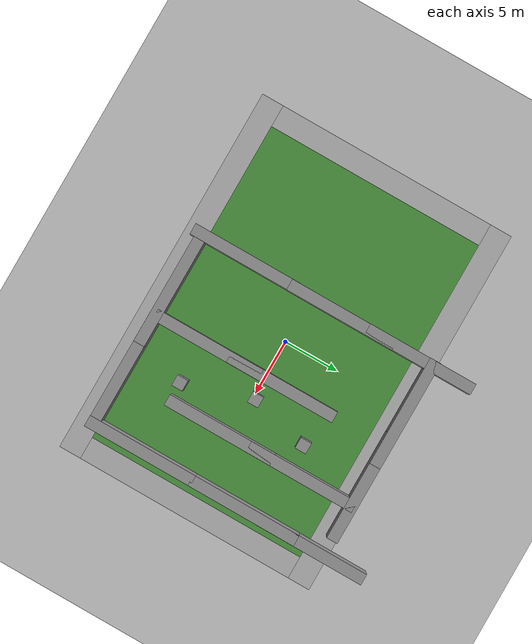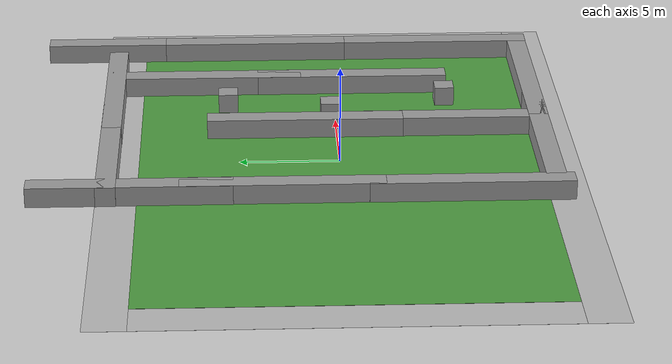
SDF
<sdf version="1.6">
 <world name="default">
  <light name="sun" type="directional">
   <pose>0 0 10 0 -0 0</pose>
   <diffuse>0.8 0.8 0.8 1</diffuse>
   <specular>0.2 0.2 0.2 1</specular>
   <attenuation>
    <range>1000</range>
    <constant>0.9</constant>
    <linear>0.01</linear>
    <quadratic>0.001</quadratic>
   </attenuation>
   <direction>-0.5 0.1 -0.9</direction>
  </light>
  <model name="ground_plane">
   <static>1</static>
   <link name="link">
    <collision name="collision">
     <geometry><plane><normal>0 0 1</normal><size>100 100</size></plane></geometry>
     <surface>
      <contact><collide_bitmask>65535</collide_bitmask></contact>
      <friction><ode><mu>100</mu><mu2>50</mu2></ode></friction>
     </surface>
    </collision>
    <visual name="visual">
     <cast_shadows>0</cast_shadows>
     <geometry><plane><normal>0 0 1</normal><size>100 100</size></plane></geometry>
     <material>
      <script><uri>file://media/materials/scripts/gazebo.material</uri><name>Gazebo/Grey</name></script>
     </material>
    </visual>
   </link>
  </model>
  <gravity>0 0 -9.8</gravity>
  <magnetic_field>6e-06 2.3e-05 -4.2e-05</magnetic_field>
  <atmosphere type="adiabatic"/>
  <physics name="default_physics" default="0" type="ode">
   <max_step_size>0.001</max_step_size>
   <real_time_factor>1</real_time_factor>
   <real_time_update_rate>1000</real_time_update_rate>
  </physics>
  <scene><ambient>0.4 0.4 0.4 1</ambient><background>0.7 0.7 0.7 1</background><shadows>1</shadows></scene>
  <audio><device>default</device></audio>
  <spherical_coordinates>
   <surface_model>EARTH_WGS84</surface_model>
   <latitude_deg>0</latitude_deg>
   <longitude_deg>0</longitude_deg>
   <elevation>0</elevation>
   <heading_deg>0</heading_deg>
  </spherical_coordinates>
  <model name="robocup_3d_field">
   <static>1</static>
   <link name="field">
    <pose>0 0 0.01 0 -0 0</pose>
    <collision name="collision">
     <geometry><plane><normal>0 0 1</normal><size>30 20</size></plane></geometry>
     <surface><friction><ode><mu>100</mu><mu2>50</mu2></ode></friction></surface>
    </collision>
    <visual name="base1">
     <pose>0 11 0.001 0 -0 0</pose>
     <cast_shadows>0</cast_shadows>
     <geometry><plane><normal>0 0 1</normal><size>34 2</size></plane></geometry>
     <material>
      <script>
       <uri>model://robocup_3Dsim_field/materials/scripts/</uri>
       <uri>model://robocup_3Dsim_field/materials/textures/</uri>
       <name>RoboCup/FieldBorder</name>
      </script>
     </material>
    </visual>
    <visual name="base2">
     <pose>0 -11 0.001 0 -0 0</pose>
     <cast_shadows>0</cast_shadows>
     <geometry><plane><normal>0 0 1</normal><size>34 2</size></plane></geometry>
     <material>
      <script>
       <uri>model://robocup_3Dsim_field/materials/scripts/</uri>
       <uri>model://robocup_3Dsim_field/materials/textures/</uri>
       <name>RoboCup/FieldBorder</name>
      </script>
     </material>
    </visual>
    <visual name="base3">
     <pose>16 0 0.001 0 -0 0</pose>
     <cast_shadows>0</cast_shadows>
     <geometry><plane><normal>0 0 1</normal><size>2 20</size></plane></geometry>
     <material>
      <script>
       <uri>model://robocup_3Dsim_field/materials/scripts/</uri>
       <uri>model://robocup_3Dsim_field/materials/textures/</uri>
       <name>RoboCup/FieldBorder</name>
      </script>
     </material>
    </visual>
    <visual name="base4">
     <pose>-16 0 0.001 0 -0 0</pose>
     <cast_shadows>0</cast_shadows>
     <geometry><plane><normal>0 0 1</normal><size>2 20</size></plane></geometry>
     <material>
      <script>
       <uri>model://robocup_3Dsim_field/materials/scripts/</uri>
       <uri>model://robocup_3Dsim_field/materials/textures/</uri>
       <name>RoboCup/FieldBorder</name>
      </script>
     </material>
    </visual>
    <visual name="carpet">
     <cast_shadows>0</cast_shadows>
     <geometry><plane><normal>0 0 1</normal><size>30 20</size></plane></geometry>
     <material>
      <script>
       <uri>model://robocup_3Dsim_field/materials/scripts/</uri>
       <uri>model://robocup_3Dsim_field/materials/textures/</uri>
       <name>RoboCup/Grass</name>
      </script>
     </material>
    </visual>
   </link>
   <pose>-0.041127 0.019225 0 0 -0 0</pose>
  </model>
  <model name="long_box_clone_0">
   <link name="link">
    <inertial>
     <mass>1</mass>
     <inertia>
      <ixx>0.166667</ixx>
      <ixy>0</ixy>
      <ixz>0</ixz>
      <iyy>0.166667</iyy>
      <iyz>0</iyz>
      <izz>0.166667</izz>
     </inertia>
    </inertial>
    <visual name="visual">
     <geometry><box><size>1 10 1</size></box></geometry>
     <material>
      <script><name>Gazebo/Grey</name><uri>file://media/materials/scripts/gazebo.material</uri></script>
      <shader type="vertex"><normal_map>__default__</normal_map></shader>
      <ambient>0.3 0.3 0.3 1</ambient>
      <diffuse>0.7 0.7 0.7 1</diffuse>
      <specular>0.01 0.01 0.01 1</specular>
      <emissive>0 0 0 1</emissive>
     </material>
    </visual>
    <collision name="collision">
     <geometry><box><size>1 10 1</size></box></geometry>
     <surface>
      <friction>
       <ode><mu>1</mu><mu2>1</mu2><fdir1>0 0 0</fdir1><slip1>0</slip1><slip2>0</slip2></ode>
       <torsional>
        <coefficient>1</coefficient>
        <patch_radius>0</patch_radius>
        <surface_radius>0</surface_radius>
        <use_patch_radius>1</use_patch_radius>
        <ode><slip>0</slip></ode>
       </torsional>
      </friction>
      <bounce><restitution_coefficient>0</restitution_coefficient><threshold>1e+06</threshold></bounce>
      <contact>
       <collide_without_contact>0</collide_without_contact>
       <collide_without_contact_bitmask>1</collide_without_contact_bitmask>
       <collide_bitmask>1</collide_bitmask>
       <ode>
        <soft_cfm>0</soft_cfm>
        <soft_erp>0.2</soft_erp>
        <kp>1e+13</kp>
        <kd>1</kd>
        <max_vel>0.01</max_vel>
        <min_depth>0</min_depth>
       </ode>
       <bullet>
        <split_impulse>1</split_impulse>
        <split_impulse_penetration_threshold>-0.01</split_impulse_penetration_threshold>
        <soft_cfm>0</soft_cfm>
        <soft_erp>0.2</soft_erp>
        <kp>1e+13</kp>
        <kd>1</kd>
       </bullet>
      </contact>
     </surface>
    </collision>
   </link>
   <static>0</static>
   <pose>-4.27651 -6.22006 0.51 0 -0 0</pose>
  </model>
  <model name="long_box_clone_clone">
   <link name="link">
    <inertial>
     <mass>1</mass>
     <inertia>
      <ixx>0.166667</ixx>
      <ixy>0</ixy>
      <ixz>0</ixz>
      <iyy>0.166667</iyy>
      <iyz>0</iyz>
      <izz>0.166667</izz>
     </inertia>
    </inertial>
    <visual name="visual">
     <geometry><box><size>1 10 1</size></box></geometry>
     <material>
      <script><name>Gazebo/Grey</name><uri>file://media/materials/scripts/gazebo.material</uri></script>
      <shader type="vertex"><normal_map>__default__</normal_map></shader>
      <ambient>0.3 0.3 0.3 1</ambient>
      <diffuse>0.7 0.7 0.7 1</diffuse>
      <specular>0.01 0.01 0.01 1</specular>
      <emissive>0 0 0 1</emissive>
     </material>
    </visual>
    <collision name="collision">
     <geometry><box><size>1 10 1</size></box></geometry>
     <surface>
      <friction>
       <ode><mu>1</mu><mu2>1</mu2><fdir1>0 0 0</fdir1><slip1>0</slip1><slip2>0</slip2></ode>
       <torsional>
        <coefficient>1</coefficient>
        <patch_radius>0</patch_radius>
        <surface_radius>0</surface_radius>
        <use_patch_radius>1</use_patch_radius>
        <ode><slip>0</slip></ode>
       </torsional>
      </friction>
      <bounce><restitution_coefficient>0</restitution_coefficient><threshold>1e+06</threshold></bounce>
      <contact>
       <collide_without_contact>0</collide_without_contact>
       <collide_without_contact_bitmask>1</collide_without_contact_bitmask>
       <collide_bitmask>1</collide_bitmask>
       <ode>
        <soft_cfm>0</soft_cfm>
        <soft_erp>0.2</soft_erp>
        <kp>1e+13</kp>
        <kd>1</kd>
        <max_vel>0.01</max_vel>
        <min_depth>0</min_depth>
       </ode>
       <bullet>
        <split_impulse>1</split_impulse>
        <split_impulse_penetration_threshold>-0.01</split_impulse_penetration_threshold>
        <soft_cfm>0</soft_cfm>
        <soft_erp>0.2</soft_erp>
        <kp>1e+13</kp>
        <kd>1</kd>
       </bullet>
      </contact>
     </surface>
    </collision>
   </link>
   <static>0</static>
   <pose>1.13888 -10.3322 0.51 0 0 -1.57222</pose>
  </model>
  <model name="long_box_clone_clone_clone">
   <link name="link">
    <inertial>
     <mass>1</mass>
     <inertia>
      <ixx>0.166667</ixx>
      <ixy>0</ixy>
      <ixz>0</ixz>
      <iyy>0.166667</iyy>
      <iyz>0</iyz>
      <izz>0.166667</izz>
     </inertia>
    </inertial>
    <visual name="visual">
     <geometry><box><size>1 10 1</size></box></geometry>
     <material>
      <script><name>Gazebo/Grey</name><uri>file://media/materials/scripts/gazebo.material</uri></script>
      <shader type="vertex"><normal_map>__default__</normal_map></shader>
      <ambient>0.3 0.3 0.3 1</ambient>
      <diffuse>0.7 0.7 0.7 1</diffuse>
      <specular>0.01 0.01 0.01 1</specular>
      <emissive>0 0 0 1</emissive>
     </material>
    </visual>
    <collision name="collision">
     <geometry><box><size>1 10 1</size></box></geometry>
     <surface>
      <friction>
       <ode><mu>1</mu><mu2>1</mu2><fdir1>0 0 0</fdir1><slip1>0</slip1><slip2>0</slip2></ode>
       <torsional>
        <coefficient>1</coefficient>
        <patch_radius>0</patch_radius>
        <surface_radius>0</surface_radius>
        <use_patch_radius>1</use_patch_radius>
        <ode><slip>0</slip></ode>
       </torsional>
      </friction>
      <bounce><restitution_coefficient>0</restitution_coefficient><threshold>1e+06</threshold></bounce>
      <contact>
       <collide_without_contact>0</collide_without_contact>
       <collide_without_contact_bitmask>1</collide_without_contact_bitmask>
       <collide_bitmask>1</collide_bitmask>
       <ode>
        <soft_cfm>0</soft_cfm>
        <soft_erp>0.2</soft_erp>
        <kp>1e+13</kp>
        <kd>1</kd>
        <max_vel>0.01</max_vel>
        <min_depth>0</min_depth>
       </ode>
       <bullet>
        <split_impulse>1</split_impulse>
        <split_impulse_penetration_threshold>-0.01</split_impulse_penetration_threshold>
        <soft_cfm>0</soft_cfm>
        <soft_erp>0.2</soft_erp>
        <kp>1e+13</kp>
        <kd>1</kd>
       </bullet>
      </contact>
     </surface>
    </collision>
   </link>
   <static>0</static>
   <pose>0.194629 11.4826 0.51 0 0 -1.57222</pose>
  </model>
  <model name="long_box_clone_0_clone">
   <link name="link">
    <inertial>
     <mass>1</mass>
     <inertia>
      <ixx>0.166667</ixx>
      <ixy>0</ixy>
      <ixz>0</ixz>
      <iyy>0.166667</iyy>
      <iyz>0</iyz>
      <izz>0.166667</izz>
     </inertia>
    </inertial>
    <visual name="visual">
     <geometry><box><size>1 10 1</size></box></geometry>
     <material>
      <script><name>Gazebo/Grey</name><uri>file://media/materials/scripts/gazebo.material</uri></script>
      <shader type="vertex"><normal_map>__default__</normal_map></shader>
      <ambient>0.3 0.3 0.3 1</ambient>
      <diffuse>0.7 0.7 0.7 1</diffuse>
      <specular>0.01 0.01 0.01 1</specular>
      <emissive>0 0 0 1</emissive>
     </material>
    </visual>
    <collision name="collision">
     <geometry><box><size>1 10 1</size></box></geometry>
     <surface>
      <friction>
       <ode><mu>1</mu><mu2>1</mu2><fdir1>0 0 0</fdir1><slip1>0</slip1><slip2>0</slip2></ode>
       <torsional>
        <coefficient>1</coefficient>
        <patch_radius>0</patch_radius>
        <surface_radius>0</surface_radius>
        <use_patch_radius>1</use_patch_radius>
        <ode><slip>0</slip></ode>
       </torsional>
      </friction>
      <bounce><restitution_coefficient>0</restitution_coefficient><threshold>1e+06</threshold></bounce>
      <contact>
       <collide_without_contact>0</collide_without_contact>
       <collide_without_contact_bitmask>1</collide_without_contact_bitmask>
       <collide_bitmask>1</collide_bitmask>
       <ode>
        <soft_cfm>0</soft_cfm>
        <soft_erp>0.2</soft_erp>
        <kp>1e+13</kp>
        <kd>1</kd>
        <max_vel>0.01</max_vel>
        <min_depth>0</min_depth>
       </ode>
       <bullet>
        <split_impulse>1</split_impulse>
        <split_impulse_penetration_threshold>-0.01</split_impulse_penetration_threshold>
        <soft_cfm>0</soft_cfm>
        <soft_erp>0.2</soft_erp>
        <kp>1e+13</kp>
        <kd>1</kd>
       </bullet>
      </contact>
     </surface>
    </collision>
   </link>
   <static>0</static>
   <pose>-4.26121 2.95203 0.51 0 -0 0</pose>
  </model>
  <model name="long_box_clone_0_clone_0">
   <link name="link">
    <inertial>
     <mass>1</mass>
     <inertia>
      <ixx>0.166667</ixx>
      <ixy>0</ixy>
      <ixz>0</ixz>
      <iyy>0.166667</iyy>
      <iyz>0</iyz>
      <izz>0.166667</izz>
     </inertia>
    </inertial>
    <visual name="visual">
     <geometry><box><size>1 10 1</size></box></geometry>
     <material>
      <script><name>Gazebo/Grey</name><uri>file://media/materials/scripts/gazebo.material</uri></script>
      <shader type="vertex"><normal_map>__default__</normal_map></shader>
      <ambient>0.3 0.3 0.3 1</ambient>
      <diffuse>0.7 0.7 0.7 1</diffuse>
      <specular>0.01 0.01 0.01 1</specular>
      <emissive>0 0 0 1</emissive>
     </material>
    </visual>
    <collision name="collision">
     <geometry><box><size>1 10 1</size></box></geometry>
     <surface>
      <friction>
       <ode><mu>1</mu><mu2>1</mu2><fdir1>0 0 0</fdir1><slip1>0</slip1><slip2>0</slip2></ode>
       <torsional>
        <coefficient>1</coefficient>
        <patch_radius>0</patch_radius>
        <surface_radius>0</surface_radius>
        <use_patch_radius>1</use_patch_radius>
        <ode><slip>0</slip></ode>
       </torsional>
      </friction>
      <bounce><restitution_coefficient>0</restitution_coefficient><threshold>1e+06</threshold></bounce>
      <contact>
       <collide_without_contact>0</collide_without_contact>
       <collide_without_contact_bitmask>1</collide_without_contact_bitmask>
       <collide_bitmask>1</collide_bitmask>
       <ode>
        <soft_cfm>0</soft_cfm>
        <soft_erp>0.2</soft_erp>
        <kp>1e+13</kp>
        <kd>1</kd>
        <max_vel>0.01</max_vel>
        <min_depth>0</min_depth>
       </ode>
       <bullet>
        <split_impulse>1</split_impulse>
        <split_impulse_penetration_threshold>-0.01</split_impulse_penetration_threshold>
        <soft_cfm>0</soft_cfm>
        <soft_erp>0.2</soft_erp>
        <kp>1e+13</kp>
        <kd>1</kd>
       </bullet>
      </contact>
     </surface>
    </collision>
   </link>
   <static>0</static>
   <pose>-4.27872 10.3447 0.51 0 -0 0</pose>
  </model>
  <model name="long_box_clone_clone_clone_clone">
   <link name="link">
    <inertial>
     <mass>1</mass>
     <inertia>
      <ixx>0.166667</ixx>
      <ixy>0</ixy>
      <ixz>0</ixz>
      <iyy>0.166667</iyy>
      <iyz>0</iyz>
      <izz>0.166667</izz>
     </inertia>
    </inertial>
    <visual name="visual">
     <geometry><box><size>1 10 1</size></box></geometry>
     <material>
      <script><name>Gazebo/Grey</name><uri>file://media/materials/scripts/gazebo.material</uri></script>
      <shader type="vertex"><normal_map>__default__</normal_map></shader>
      <ambient>0.3 0.3 0.3 1</ambient>
      <diffuse>0.7 0.7 0.7 1</diffuse>
      <specular>0.01 0.01 0.01 1</specular>
      <emissive>0 0 0 1</emissive>
     </material>
    </visual>
    <collision name="collision">
     <geometry><box><size>1 10 1</size></box></geometry>
     <surface>
      <friction>
       <ode><mu>1</mu><mu2>1</mu2><fdir1>0 0 0</fdir1><slip1>0</slip1><slip2>0</slip2></ode>
       <torsional>
        <coefficient>1</coefficient>
        <patch_radius>0</patch_radius>
        <surface_radius>0</surface_radius>
        <use_patch_radius>1</use_patch_radius>
        <ode><slip>0</slip></ode>
       </torsional>
      </friction>
      <bounce><restitution_coefficient>0</restitution_coefficient><threshold>1e+06</threshold></bounce>
      <contact>
       <collide_without_contact>0</collide_without_contact>
       <collide_without_contact_bitmask>1</collide_without_contact_bitmask>
       <collide_bitmask>1</collide_bitmask>
       <ode>
        <soft_cfm>0</soft_cfm>
        <soft_erp>0.2</soft_erp>
        <kp>1e+13</kp>
        <kd>1</kd>
        <max_vel>0.01</max_vel>
        <min_depth>0</min_depth>
       </ode>
       <bullet>
        <split_impulse>1</split_impulse>
        <split_impulse_penetration_threshold>-0.01</split_impulse_penetration_threshold>
        <soft_cfm>0</soft_cfm>
        <soft_erp>0.2</soft_erp>
        <kp>1e+13</kp>
        <kd>1</kd>
       </bullet>
      </contact>
     </surface>
    </collision>
   </link>
   <static>0</static>
   <pose>7.2507 11.4655 0.51 0 0 -1.57222</pose>
  </model>
  <model name="long_box_clone_clone_clone_clone_0">
   <link name="link">
    <inertial>
     <mass>1</mass>
     <inertia>
      <ixx>0.166667</ixx>
      <ixy>0</ixy>
      <ixz>0</ixz>
      <iyy>0.166667</iyy>
      <iyz>0</iyz>
      <izz>0.166667</izz>
     </inertia>
    </inertial>
    <visual name="visual">
     <geometry><box><size>1 10 1</size></box></geometry>
     <material>
      <script><name>Gazebo/Grey</name><uri>file://media/materials/scripts/gazebo.material</uri></script>
      <shader type="vertex"><normal_map>__default__</normal_map></shader>
      <ambient>0.3 0.3 0.3 1</ambient>
      <diffuse>0.7 0.7 0.7 1</diffuse>
      <specular>0.01 0.01 0.01 1</specular>
      <emissive>0 0 0 1</emissive>
     </material>
    </visual>
    <collision name="collision">
     <geometry><box><size>1 10 1</size></box></geometry>
     <surface>
      <friction>
       <ode><mu>1</mu><mu2>1</mu2><fdir1>0 0 0</fdir1><slip1>0</slip1><slip2>0</slip2></ode>
       <torsional>
        <coefficient>1</coefficient>
        <patch_radius>0</patch_radius>
        <surface_radius>0</surface_radius>
        <use_patch_radius>1</use_patch_radius>
        <ode><slip>0</slip></ode>
       </torsional>
      </friction>
      <bounce><restitution_coefficient>0</restitution_coefficient><threshold>1e+06</threshold></bounce>
      <contact>
       <collide_without_contact>0</collide_without_contact>
       <collide_without_contact_bitmask>1</collide_without_contact_bitmask>
       <collide_bitmask>1</collide_bitmask>
       <ode>
        <soft_cfm>0</soft_cfm>
        <soft_erp>0.2</soft_erp>
        <kp>1e+13</kp>
        <kd>1</kd>
        <max_vel>0.01</max_vel>
        <min_depth>0</min_depth>
       </ode>
       <bullet>
        <split_impulse>1</split_impulse>
        <split_impulse_penetration_threshold>-0.01</split_impulse_penetration_threshold>
        <soft_cfm>0</soft_cfm>
        <soft_erp>0.2</soft_erp>
        <kp>1e+13</kp>
        <kd>1</kd>
       </bullet>
      </contact>
     </surface>
    </collision>
   </link>
   <static>0</static>
   <pose>8.23687 -10.3471 0.51 0 0 -1.57222</pose>
  </model>
  <model name="long_box_clone_0_clone_clone">
   <link name="link">
    <inertial>
     <mass>1</mass>
     <inertia>
      <ixx>0.166667</ixx>
      <ixy>0</ixy>
      <ixz>0</ixz>
      <iyy>0.166667</iyy>
      <iyz>0</iyz>
      <izz>0.166667</izz>
     </inertia>
    </inertial>
    <visual name="visual">
     <geometry><box><size>1 10 1</size></box></geometry>
     <material>
      <script><name>Gazebo/Grey</name><uri>file://media/materials/scripts/gazebo.material</uri></script>
      <shader type="vertex"><normal_map>__default__</normal_map></shader>
      <ambient>0.3 0.3 0.3 1</ambient>
      <diffuse>0.7 0.7 0.7 1</diffuse>
      <specular>0.01 0.01 0.01 1</specular>
      <emissive>0 0 0 1</emissive>
     </material>
    </visual>
    <collision name="collision">
     <geometry><box><size>1 10 1</size></box></geometry>
     <surface>
      <friction>
       <ode><mu>1</mu><mu2>1</mu2><fdir1>0 0 0</fdir1><slip1>0</slip1><slip2>0</slip2></ode>
       <torsional>
        <coefficient>1</coefficient>
        <patch_radius>0</patch_radius>
        <surface_radius>0</surface_radius>
        <use_patch_radius>1</use_patch_radius>
        <ode><slip>0</slip></ode>
       </torsional>
      </friction>
      <bounce><restitution_coefficient>0</restitution_coefficient><threshold>1e+06</threshold></bounce>
      <contact>
       <collide_without_contact>0</collide_without_contact>
       <collide_without_contact_bitmask>1</collide_without_contact_bitmask>
       <collide_bitmask>1</collide_bitmask>
       <ode>
        <soft_cfm>0</soft_cfm>
        <soft_erp>0.2</soft_erp>
        <kp>1e+13</kp>
        <kd>1</kd>
        <max_vel>0.01</max_vel>
        <min_depth>0</min_depth>
       </ode>
       <bullet>
        <split_impulse>1</split_impulse>
        <split_impulse_penetration_threshold>-0.01</split_impulse_penetration_threshold>
        <soft_cfm>0</soft_cfm>
        <soft_erp>0.2</soft_erp>
        <kp>1e+13</kp>
        <kd>1</kd>
       </bullet>
      </contact>
     </surface>
    </collision>
   </link>
   <static>0</static>
   <pose>3.38405 -5.38168 0.51 0 -0 0</pose>
  </model>
  <model name="long_box_clone_0_clone_clone_0">
   <link name="link">
    <inertial>
     <mass>1</mass>
     <inertia>
      <ixx>0.166667</ixx>
      <ixy>0</ixy>
      <ixz>0</ixz>
      <iyy>0.166667</iyy>
      <iyz>0</iyz>
      <izz>0.166667</izz>
     </inertia>
    </inertial>
    <visual name="visual">
     <geometry><box><size>1 10 1</size></box></geometry>
     <material>
      <script><name>Gazebo/Grey</name><uri>file://media/materials/scripts/gazebo.material</uri></script>
      <shader type="vertex"><normal_map>__default__</normal_map></shader>
      <ambient>0.3 0.3 0.3 1</ambient>
      <diffuse>0.7 0.7 0.7 1</diffuse>
      <specular>0.01 0.01 0.01 1</specular>
      <emissive>0 0 0 1</emissive>
     </material>
    </visual>
    <collision name="collision">
     <geometry><box><size>1 10 1</size></box></geometry>
     <surface>
      <friction>
       <ode><mu>1</mu><mu2>1</mu2><fdir1>0 0 0</fdir1><slip1>0</slip1><slip2>0</slip2></ode>
       <torsional>
        <coefficient>1</coefficient>
        <patch_radius>0</patch_radius>
        <surface_radius>0</surface_radius>
        <use_patch_radius>1</use_patch_radius>
        <ode><slip>0</slip></ode>
       </torsional>
      </friction>
      <bounce><restitution_coefficient>0</restitution_coefficient><threshold>1e+06</threshold></bounce>
      <contact>
       <collide_without_contact>0</collide_without_contact>
       <collide_without_contact_bitmask>1</collide_without_contact_bitmask>
       <collide_bitmask>1</collide_bitmask>
       <ode>
        <soft_cfm>0</soft_cfm>
        <soft_erp>0.2</soft_erp>
        <kp>1e+13</kp>
        <kd>1</kd>
        <max_vel>0.01</max_vel>
        <min_depth>0</min_depth>
       </ode>
       <bullet>
        <split_impulse>1</split_impulse>
        <split_impulse_penetration_threshold>-0.01</split_impulse_penetration_threshold>
        <soft_cfm>0</soft_cfm>
        <soft_erp>0.2</soft_erp>
        <kp>1e+13</kp>
        <kd>1</kd>
       </bullet>
      </contact>
     </surface>
    </collision>
   </link>
   <static>0</static>
   <pose>3.36721 1.62579 0.51 0 -0 0</pose>
  </model>
  <model name="long_box_clone_0_clone_clone_1">
   <link name="link">
    <inertial>
     <mass>1</mass>
     <inertia>
      <ixx>0.166667</ixx>
      <ixy>0</ixy>
      <ixz>0</ixz>
      <iyy>0.166667</iyy>
      <iyz>0</iyz>
      <izz>0.166667</izz>
     </inertia>
    </inertial>
    <visual name="visual">
     <geometry><box><size>1 10 1</size></box></geometry>
     <material>
      <script><name>Gazebo/Grey</name><uri>file://media/materials/scripts/gazebo.material</uri></script>
      <shader type="vertex"><normal_map>__default__</normal_map></shader>
      <ambient>0.3 0.3 0.3 1</ambient>
      <diffuse>0.7 0.7 0.7 1</diffuse>
      <specular>0.01 0.01 0.01 1</specular>
      <emissive>0 0 0 1</emissive>
     </material>
    </visual>
    <collision name="collision">
     <geometry><box><size>1 10 1</size></box></geometry>
     <surface>
      <friction>
       <ode><mu>1</mu><mu2>1</mu2><fdir1>0 0 0</fdir1><slip1>0</slip1><slip2>0</slip2></ode>
       <torsional>
        <coefficient>1</coefficient>
        <patch_radius>0</patch_radius>
        <surface_radius>0</surface_radius>
        <use_patch_radius>1</use_patch_radius>
        <ode><slip>0</slip></ode>
       </torsional>
      </friction>
      <bounce><restitution_coefficient>0</restitution_coefficient><threshold>1e+06</threshold></bounce>
      <contact>
       <collide_without_contact>0</collide_without_contact>
       <collide_without_contact_bitmask>1</collide_without_contact_bitmask>
       <collide_bitmask>1</collide_bitmask>
       <ode>
        <soft_cfm>0</soft_cfm>
        <soft_erp>0.2</soft_erp>
        <kp>1e+13</kp>
        <kd>1</kd>
        <max_vel>0.01</max_vel>
        <min_depth>0</min_depth>
       </ode>
       <bullet>
        <split_impulse>1</split_impulse>
        <split_impulse_penetration_threshold>-0.01</split_impulse_penetration_threshold>
        <soft_cfm>0</soft_cfm>
        <soft_erp>0.2</soft_erp>
        <kp>1e+13</kp>
        <kd>1</kd>
       </bullet>
      </contact>
     </surface>
    </collision>
   </link>
   <static>0</static>
   <pose>8.96269 6.68846 0.51 0 -0 0</pose>
  </model>
  <model name="long_box_clone_0_clone_clone_2">
   <link name="link">
    <inertial>
     <mass>1</mass>
     <inertia>
      <ixx>0.166667</ixx>
      <ixy>0</ixy>
      <ixz>0</ixz>
      <iyy>0.166667</iyy>
      <iyz>0</iyz>
      <izz>0.166667</izz>
     </inertia>
    </inertial>
    <visual name="visual">
     <geometry><box><size>1 10 1</size></box></geometry>
     <material>
      <script><name>Gazebo/Grey</name><uri>file://media/materials/scripts/gazebo.material</uri></script>
      <shader type="vertex"><normal_map>__default__</normal_map></shader>
      <ambient>0.3 0.3 0.3 1</ambient>
      <diffuse>0.7 0.7 0.7 1</diffuse>
      <specular>0.01 0.01 0.01 1</specular>
      <emissive>0 0 0 1</emissive>
     </material>
    </visual>
    <collision name="collision">
     <geometry><box><size>1 10 1</size></box></geometry>
     <surface>
      <friction>
       <ode><mu>1</mu><mu2>1</mu2><fdir1>0 0 0</fdir1><slip1>0</slip1><slip2>0</slip2></ode>
       <torsional>
        <coefficient>1</coefficient>
        <patch_radius>0</patch_radius>
        <surface_radius>0</surface_radius>
        <use_patch_radius>1</use_patch_radius>
        <ode><slip>0</slip></ode>
       </torsional>
      </friction>
      <bounce><restitution_coefficient>0</restitution_coefficient><threshold>1e+06</threshold></bounce>
      <contact>
       <collide_without_contact>0</collide_without_contact>
       <collide_without_contact_bitmask>1</collide_without_contact_bitmask>
       <collide_bitmask>1</collide_bitmask>
       <ode>
        <soft_cfm>0</soft_cfm>
        <soft_erp>0.2</soft_erp>
        <kp>1e+13</kp>
        <kd>1</kd>
        <max_vel>0.01</max_vel>
        <min_depth>0</min_depth>
       </ode>
       <bullet>
        <split_impulse>1</split_impulse>
        <split_impulse_penetration_threshold>-0.01</split_impulse_penetration_threshold>
        <soft_cfm>0</soft_cfm>
        <soft_erp>0.2</soft_erp>
        <kp>1e+13</kp>
        <kd>1</kd>
       </bullet>
      </contact>
     </surface>
    </collision>
   </link>
   <static>0</static>
   <pose>8.95807 -1.04426 0.51 0 -0 0</pose>
  </model>
  <model name="long_box_clone_0_clone_clone_3">
   <link name="link">
    <inertial>
     <mass>1</mass>
     <inertia>
      <ixx>0.166667</ixx>
      <ixy>0</ixy>
      <ixz>0</ixz>
      <iyy>0.166667</iyy>
      <iyz>0</iyz>
      <izz>0.166667</izz>
     </inertia>
    </inertial>
    <visual name="visual">
     <geometry><box><size>1 10 1</size></box></geometry>
     <material>
      <script><name>Gazebo/Grey</name><uri>file://media/materials/scripts/gazebo.material</uri></script>
      <shader type="vertex"><normal_map>__default__</normal_map></shader>
      <ambient>0.3 0.3 0.3 1</ambient>
      <diffuse>0.7 0.7 0.7 1</diffuse>
      <specular>0.01 0.01 0.01 1</specular>
      <emissive>0 0 0 1</emissive>
     </material>
    </visual>
    <collision name="collision">
     <geometry><box><size>1 10 1</size></box></geometry>
     <surface>
      <friction>
       <ode><mu>1</mu><mu2>1</mu2><fdir1>0 0 0</fdir1><slip1>0</slip1><slip2>0</slip2></ode>
       <torsional>
        <coefficient>1</coefficient>
        <patch_radius>0</patch_radius>
        <surface_radius>0</surface_radius>
        <use_patch_radius>1</use_patch_radius>
        <ode><slip>0</slip></ode>
       </torsional>
      </friction>
      <bounce><restitution_coefficient>0</restitution_coefficient><threshold>1e+06</threshold></bounce>
      <contact>
       <collide_without_contact>0</collide_without_contact>
       <collide_without_contact_bitmask>1</collide_without_contact_bitmask>
       <collide_bitmask>1</collide_bitmask>
       <ode>
        <soft_cfm>0</soft_cfm>
        <soft_erp>0.2</soft_erp>
        <kp>1e+13</kp>
        <kd>1</kd>
        <max_vel>0.01</max_vel>
        <min_depth>0</min_depth>
       </ode>
       <bullet>
        <split_impulse>1</split_impulse>
        <split_impulse_penetration_threshold>-0.01</split_impulse_penetration_threshold>
        <soft_cfm>0</soft_cfm>
        <soft_erp>0.2</soft_erp>
        <kp>1e+13</kp>
        <kd>1</kd>
       </bullet>
      </contact>
     </surface>
    </collision>
   </link>
   <static>0</static>
   <pose>13.7073 -5.87174 0.51 0 -0 0</pose>
  </model>
  <model name="long_box_clone_0_clone_clone_4">
   <link name="link">
    <inertial>
     <mass>1</mass>
     <inertia>
      <ixx>0.166667</ixx>
      <ixy>0</ixy>
      <ixz>0</ixz>
      <iyy>0.166667</iyy>
      <iyz>0</iyz>
      <izz>0.166667</izz>
     </inertia>
    </inertial>
    <visual name="visual">
     <geometry><box><size>1 10 1</size></box></geometry>
     <material>
      <script><name>Gazebo/Grey</name><uri>file://media/materials/scripts/gazebo.material</uri></script>
      <shader type="vertex"><normal_map>__default__</normal_map></shader>
      <ambient>0.3 0.3 0.3 1</ambient>
      <diffuse>0.7 0.7 0.7 1</diffuse>
      <specular>0.01 0.01 0.01 1</specular>
      <emissive>0 0 0 1</emissive>
     </material>
    </visual>
    <collision name="collision">
     <geometry><box><size>1 10 1</size></box></geometry>
     <surface>
      <friction>
       <ode><mu>1</mu><mu2>1</mu2><fdir1>0 0 0</fdir1><slip1>0</slip1><slip2>0</slip2></ode>
       <torsional>
        <coefficient>1</coefficient>
        <patch_radius>0</patch_radius>
        <surface_radius>0</surface_radius>
        <use_patch_radius>1</use_patch_radius>
        <ode><slip>0</slip></ode>
       </torsional>
      </friction>
      <bounce><restitution_coefficient>0</restitution_coefficient><threshold>1e+06</threshold></bounce>
      <contact>
       <collide_without_contact>0</collide_without_contact>
       <collide_without_contact_bitmask>1</collide_without_contact_bitmask>
       <collide_bitmask>1</collide_bitmask>
       <ode>
        <soft_cfm>0</soft_cfm>
        <soft_erp>0.2</soft_erp>
        <kp>1e+13</kp>
        <kd>1</kd>
        <max_vel>0.01</max_vel>
        <min_depth>0</min_depth>
       </ode>
       <bullet>
        <split_impulse>1</split_impulse>
        <split_impulse_penetration_threshold>-0.01</split_impulse_penetration_threshold>
        <soft_cfm>0</soft_cfm>
        <soft_erp>0.2</soft_erp>
        <kp>1e+13</kp>
        <kd>1</kd>
       </bullet>
      </contact>
     </surface>
    </collision>
   </link>
   <static>0</static>
   <pose>13.7116 3.93919 0.51 0 -0 0</pose>
  </model>
  <model name="long_box_clone_0_clone_clone_5">
   <link name="link">
    <inertial>
     <mass>1</mass>
     <inertia>
      <ixx>0.166667</ixx>
      <ixy>0</ixy>
      <ixz>0</ixz>
      <iyy>0.166667</iyy>
      <iyz>0</iyz>
      <izz>0.166667</izz>
     </inertia>
    </inertial>
    <visual name="visual">
     <geometry><box><size>1 10 1</size></box></geometry>
     <material>
      <script><name>Gazebo/Grey</name><uri>file://media/materials/scripts/gazebo.material</uri></script>
      <shader type="vertex"><normal_map>__default__</normal_map></shader>
      <ambient>0.3 0.3 0.3 1</ambient>
      <diffuse>0.7 0.7 0.7 1</diffuse>
      <specular>0.01 0.01 0.01 1</specular>
      <emissive>0 0 0 1</emissive>
     </material>
    </visual>
    <collision name="collision">
     <geometry><box><size>1 10 1</size></box></geometry>
     <surface>
      <friction>
       <ode><mu>1</mu><mu2>1</mu2><fdir1>0 0 0</fdir1><slip1>0</slip1><slip2>0</slip2></ode>
       <torsional>
        <coefficient>1</coefficient>
        <patch_radius>0</patch_radius>
        <surface_radius>0</surface_radius>
        <use_patch_radius>1</use_patch_radius>
        <ode><slip>0</slip></ode>
       </torsional>
      </friction>
      <bounce><restitution_coefficient>0</restitution_coefficient><threshold>1e+06</threshold></bounce>
      <contact>
       <collide_without_contact>0</collide_without_contact>
       <collide_without_contact_bitmask>1</collide_without_contact_bitmask>
       <collide_bitmask>1</collide_bitmask>
       <ode>
        <soft_cfm>0</soft_cfm>
        <soft_erp>0.2</soft_erp>
        <kp>1e+13</kp>
        <kd>1</kd>
        <max_vel>0.01</max_vel>
        <min_depth>0</min_depth>
       </ode>
       <bullet>
        <split_impulse>1</split_impulse>
        <split_impulse_penetration_threshold>-0.01</split_impulse_penetration_threshold>
        <soft_cfm>0</soft_cfm>
        <soft_erp>0.2</soft_erp>
        <kp>1e+13</kp>
        <kd>1</kd>
       </bullet>
      </contact>
     </surface>
    </collision>
   </link>
   <static>0</static>
   <pose>13.7197 10.3206 0.51 0 -0 0</pose>
  </model>
  <model name="unit_box">
   <pose>6.66032 5.54237 0.5 0 -0 0</pose>
   <link name="link">
    <inertial>
     <mass>1</mass>
     <inertia>
      <ixx>0.166667</ixx>
      <ixy>0</ixy>
      <ixz>0</ixz>
      <iyy>0.166667</iyy>
      <iyz>0</iyz>
      <izz>0.166667</izz>
     </inertia>
    </inertial>
    <collision name="collision"><geometry><box><size>1 1 1</size></box></geometry></collision>
    <visual name="visual">
     <geometry><box><size>1 1 1</size></box></geometry>
     <material>
      <script><name>Gazebo/Grey</name><uri>file://media/materials/scripts/gazebo.material</uri></script>
     </material>
    </visual>
   </link>
  </model>
  <model name="unit_box_0">
   <pose>5.34312 0.254978 0.5 0 -0 0</pose>
   <link name="link">
    <inertial>
     <mass>1</mass>
     <inertia>
      <ixx>0.166667</ixx>
      <ixy>0</ixy>
      <ixz>0</ixz>
      <iyy>0.166667</iyy>
      <iyz>0</iyz>
      <izz>0.166667</izz>
     </inertia>
    </inertial>
    <collision name="collision"><geometry><box><size>1 1 1</size></box></geometry></collision>
    <visual name="visual">
     <geometry><box><size>1 1 1</size></box></geometry>
     <material>
      <script><name>Gazebo/Grey</name><uri>file://media/materials/scripts/gazebo.material</uri></script>
     </material>
    </visual>
   </link>
  </model>
  <model name="unit_box_1">
   <pose>7.24825 -5.81573 0.5 0 -0 0</pose>
   <link name="link">
    <inertial>
     <mass>1</mass>
     <inertia>
      <ixx>0.166667</ixx>
      <ixy>0</ixy>
      <ixz>0</ixz>
      <iyy>0.166667</iyy>
      <iyz>0</iyz>
      <izz>0.166667</izz>
     </inertia>
    </inertial>
    <collision name="collision"><geometry><box><size>1 1 1</size></box></geometry></collision>
    <visual name="visual">
     <geometry><box><size>1 1 1</size></box></geometry>
     <material>
      <script><name>Gazebo/Grey</name><uri>file://media/materials/scripts/gazebo.material</uri></script>
     </material>
    </visual>
   </link>
  </model>
 </world>
</sdf>
